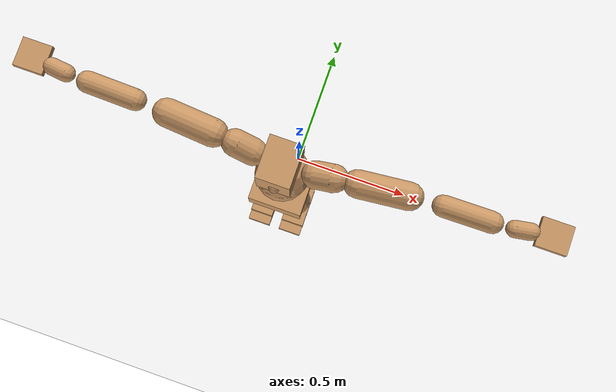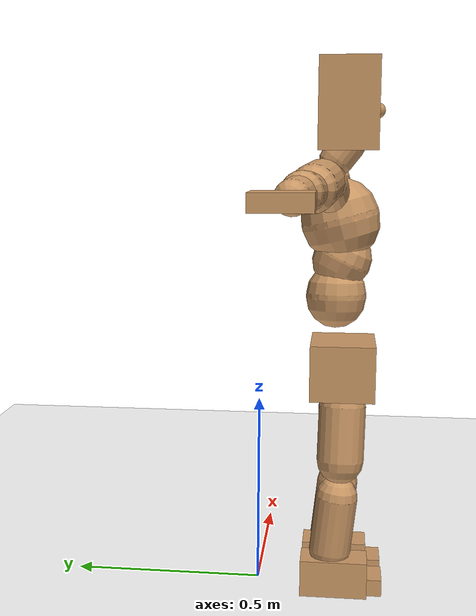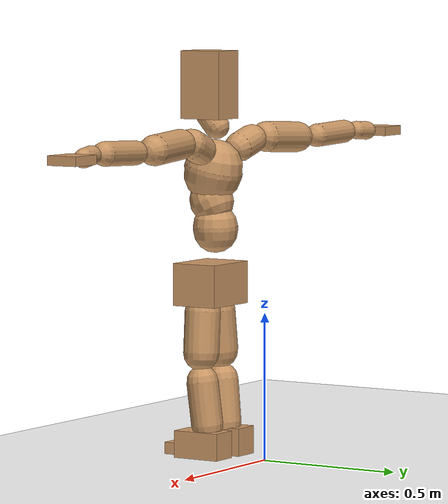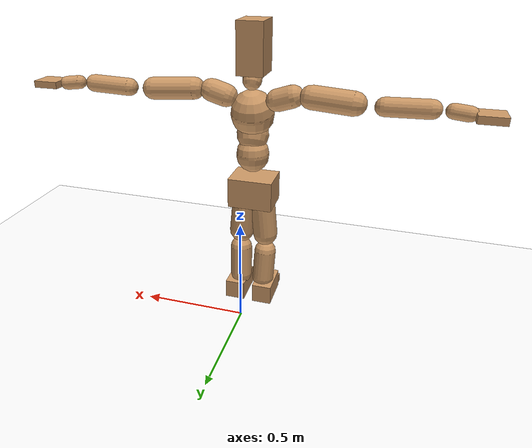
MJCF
<mujoco model="humanoid">
  <option integrator="implicitfast" />

  <visual>
    <global offwidth="1280" offheight="960" />
    <headlight active="1" ambient="0.34 0.34 0.34" diffuse="0.5 0.5 0.5" />
  </visual>

  <default>
    <joint damping="2" stiffness="2" armature="0.01" limited="true" solimplimit="0 .99 .01" />
    <geom condim="1" friction="0.7 0.005 0.0001" solimp=".99 .99 .003" solref="0.015 1" margin="0.001" rgba="0.8 0.6 .4 1" />
    <default class="smplcontact">
      <geom condim="3" friction="1. 0.005 0.0001" solref="0.015 1" solimp="0.98 0.98 0.001" priority="1" />
    </default>
    <default class="stiff_medium">
      <joint stiffness="10" />
    </default>
    <default class="stiff_medium_higher">
      <joint stiffness="50" />
    </default>
    <default class="stiff_high">
      <joint stiffness="100" />
    </default>
  </default>

  <asset>
    <texture type="skybox" builtin="gradient" rgb1="0.99 0.99 0.99" rgb2="0.608 0.828 0.892" width="100" />
    <texture builtin="flat" height="1278" mark="cross" markrgb="1 1 1" name="texgeom" random="0.01" rgb1="0.8 0.6 0.4" rgb2="0.8 0.6 0.4" type="cube" width="127" />
    <texture name="texplane" type="2d" builtin="checker" markrgb="1 1 1" rgb1="0.756 0.772 0.76" rgb2="0.6 0.6 0.6" width="100" height="100" />
    <material name="MatPlane" reflectance="0.5" texture="texplane" texrepeat="1 1" texuniform="true" />
    <material name="geom" texture="texgeom" texuniform="true" />
  </asset>

  <worldbody>
    <light name="tracking_light" pos="0 0 7" dir="0 0 -1" directional="true" cutoff="100" exponent="1" diffuse="1 1 1" specular="0.1 0.1 0.1" mode="trackcom" />
    <camera name="back" pos="0 3 2.4" xyaxes="-1 0 0 0 -1 2" mode="trackcom" />
    <camera name="side" pos="-3 0 2.4" xyaxes="0 -1 0 1 0 2" mode="trackcom" />
    <camera name="front_side" pos="-2.8 -2.8 0.8" xyaxes="0.5 -0.5 0 0.1 0.1 1" mode="trackcom" />
    <geom condim="3" name="floor" pos="0 0 0" rgba="1 1 1 1" size="100 100 .2" type="plane" material="MatPlane" />
    <body name="Pelvis" pos="-0.0018 -0.2233 0.603363" euler="90 0 0">
      <site name="Pelvis" size="0.01" />
      <freejoint name="Pelvis" />
      <geom type="box" pos="-0.0000 -0.0121 -0.0055" size="0.1069 0.0722 0.083" quat="1.0000 0.0000 0.0000 0.0000" density="3165.830099" name="Pelvis" />
      <body name="L_Hip" pos="0.0434375 -0.057125 -0.00425">
        <joint name="L_Hip_x" type="hinge" pos="0 0 0" axis="1 0 0" stiffness="4.682612346938775" range="-160.0 22.92" class="stiff_medium" damping="5.761376063259233" armature="0.003150516248715214"/>
        <joint name="L_Hip_y" type="hinge" pos="0 0 0" axis="0 1 0" stiffness="4.729285204081632" range="-70.0 70.0" class="stiff_medium" damping="5.2271909514404244" armature="0.00577751691085134"/>
        <joint name="L_Hip_z" type="hinge" pos="0 0 0" axis="0 0 1" stiffness="4.725288673469388" range="-28.65 90.0" class="stiff_medium" damping="3.855798953286389" armature="0.003146302077085308"/>
        <geom type="capsule" density="2040.816327" fromto="0.0043125 -0.046875 -0.0005625 0.017125 -0.187625 -0.00225" size="0.0615" name="L_Hip" />
        <body name="L_Knee" pos="0.0214375 -0.2345 -0.0028125">
          <joint name="L_Knee_x" type="hinge" pos="0 0 0" axis="1 0 0" range="-5.16 171.89" damping="3.3147767653831233" armature="0.003468205500974926" stiffness="0.9900423469387756"/>
          <joint name="L_Knee_y" type="hinge" pos="0 0 0" axis="0 1 0" range="-4.58 6.88" damping="4.406653617352898" armature="0.0063275203257154205" stiffness="0.9590346565349543"/>
          <joint name="L_Knee_z" type="hinge" pos="0 0 0" axis="0 0 1" range="-6.88 4.58" damping="3.3272526227236514" armature="0.0034456063533856753" stiffness="1.0040513265306124"/>
          <geom type="capsule" density="1234.567901" fromto="-0.0016875 -0.04975 -0.0054375 -0.0068125 -0.199 -0.021875" size="0.0541" name="L_Knee" />
          <body name="L_Ankle" pos="-0.0085 -0.24875 -0.0273125">
            <joint name="L_Ankle_x" type="hinge" pos="0 0 0" axis="1 0 0" range="-45.84 45.84" class="stiff_medium" damping="3.6717736084900663" armature="0.00599196508089074" stiffness="6.25"/>
            <joint name="L_Ankle_y" type="hinge" pos="0 0 0" axis="0 1 0" range="-74.48 22.92" class="stiff_medium" damping="1.858589102984691" armature="0.006141072806637225" stiffness="6.25"/>
            <joint name="L_Ankle_z" type="hinge" pos="0 0 0" axis="0 0 1" range="-4.58 4.58" class="stiff_medium" damping="4.001717943795461" armature="0.007117220667419809" stiffness="6.25"/>
            <geom type="box" pos="0.0145625 -0.0149375 0.015125" size="0.0483 0.0464 0.085" quat="1.0000 0.0000 0.0000 0.0000" density="449.071558" name="L_Ankle" class="smplcontact" />
            <body name="L_Toe" pos="0.0165 -0.034875 0.0745625">
              <joint name="L_Toe_x" type="hinge" pos="0 0 0" axis="1 0 0" range="-91.67 22.92" armature="0.007683229914736962" damping="1.385931989198691" stiffness="1.25"/>
              <joint name="L_Toe_y" type="hinge" pos="0 0 0" axis="0 1 0" range="-4.58 4.58" armature="0.008367648440754674" damping="1.446344395428927" stiffness="1.25"/>
              <joint name="L_Toe_z" type="hinge" pos="0 0 0" axis="0 0 1" range="-4.58 4.58" armature="0.009751505861704549" damping="1.5613700603720237" stiffness="1.25"/>
              <geom type="box" pos="-0.001875 0.0034375 0.0155" size="0.0478 0.02 0.0496" quat="1.0000 0.0000 0.0000 0.0000" density="423.206892" name="L_Toe" class="smplcontact" />
            </body>
          </body>
        </body>
      </body>
      <body name="R_Hip" pos="-0.0423125 -0.0565625 -0.0026875">
        <joint name="R_Hip_x" type="hinge" pos="0 0 0" axis="1 0 0" stiffness="4.682612346938775" range="-160.0 22.92" class="stiff_medium" damping="5.761376063259233" armature="0.003150516248715214"/>
        <joint name="R_Hip_y" type="hinge" pos="0 0 0" axis="0 1 0" stiffness="4.729285204081632" range="-70.0 70.0" class="stiff_medium" damping="5.2271909514404244" armature="0.00577751691085134"/>
        <joint name="R_Hip_z" type="hinge" pos="0 0 0" axis="0 0 1" stiffness="4.725288673469388" range="-90.0 28.65" class="stiff_medium" damping="3.855798953286389" armature="0.003146302077085308"/>
        <geom type="capsule" density="2040.816327" fromto="-0.0048125 -0.0478125 -0.001125 -0.019125 -0.191312 -0.0044375" size="0.0606" name="R_Hip" />
        <body name="R_Knee" pos="-0.0239375 -0.239125 -0.0055625">
          <joint name="R_Knee_x" type="hinge" pos="0 0 0" axis="1 0 0" range="-5.16 171.89" damping="3.3147767653831233" armature="0.003468205500974926" stiffness="0.9900423469387756"/>
          <joint name="R_Knee_y" type="hinge" pos="0 0 0" axis="0 1 0" range="-6.88 4.58" damping="4.406653617352898" armature="0.0063275203257154205" stiffness="0.9590346565349543"/>
          <joint name="R_Knee_z" type="hinge" pos="0 0 0" axis="0 0 1" range="-4.58 6.88" damping="3.3272526227236514" armature="0.0034456063533856753" stiffness="1.0040513265306124"/>
          <geom type="capsule" density="1234.567901" fromto="0.002 -0.0498125 -0.0053125 0.007875 -0.199187 -0.021125" size="0.0541" name="R_Knee" />
          <body name="R_Ankle" pos="0.009875 -0.249 -0.0264375">
            <joint name="R_Ankle_x" type="hinge" pos="0 0 0" axis="1 0 0" range="-45.84 45.84" class="stiff_medium" damping="3.6717736084900663" armature="0.00599196508089074" stiffness="6.25"/>
            <joint name="R_Ankle_y" type="hinge" pos="0 0 0" axis="0 1 0" range="-22.92 74.48" class="stiff_medium" damping="1.858589102984691" armature="0.006141072806637225" stiffness="6.25"/>
            <joint name="R_Ankle_z" type="hinge" pos="0 0 0" axis="0 0 1" range="-4.58 4.58" class="stiff_medium" damping="4.001717943795461" armature="0.007117220667419809" stiffness="6.25"/>
            <geom type="box" pos="-0.01325 -0.010875 0.016" size="0.0483 0.0478 0.0865" quat="1.0000 0.0000 0.0000 0.0000" density="434.700981" name="R_Ankle" class="smplcontact" />
            <body name="R_Toe" pos="-0.015875 -0.0300625 0.0770625">
              <joint name="R_Toe_x" type="hinge" pos="0 0 0" axis="1 0 0" range="-91.67 22.92" armature="0.007683229914736962" damping="1.385931989198691" stiffness="1.25"/>
              <joint name="R_Toe_y" type="hinge" pos="0 0 0" axis="0 1 0" range="-4.58 4.58" armature="0.008367648440754674" damping="1.446344395428927" stiffness="1.25"/>
              <joint name="R_Toe_z" type="hinge" pos="0 0 0" axis="0 0 1" range="-4.58 4.58" armature="0.009751505861704549" damping="1.5613700603720237" stiffness="1.25"/>
              <geom type="box" pos="0.002625 0.0028125 0.0141875" size="0.0479 0.0216 0.0493" quat="1.0000 0.0000 0.0000 0.0000" density="407.384095" name="R_Toe" class="smplcontact" />
            </body>
          </body>
        </body>
      </body>
      <body name="Torso" pos="-0.0025 0.109 -0.0267">
        <joint name="Torso_x" type="hinge" pos="0 0 0" axis="1 0 0" range="-25.78 57.3" class="stiff_medium" damping="16.249002662379564" armature="0.011000822944888132" stiffness="10.667084285714289"/>
        <joint name="Torso_y" type="hinge" pos="0 0 0" axis="0 1 0" range="-57.3 57.3" class="stiff_high" damping="25.827862257678852" armature="0.015782642166796146" stiffness="105.6664755102041"/>
        <joint name="Torso_z" type="hinge" pos="0 0 0" axis="0 0 1" range="-34.38 34.38" class="stiff_high" damping="22.95942684909094" armature="0.012628565201764915" stiffness="104.35375531914897"/>
        <geom type="capsule" density="2040.816327" fromto="0.0025 0.0608 0.0005 0.003 0.0743 0.0006" size="0.0769" name="Torso" />
        <body name="Spine" pos="0.0055 0.1352 0.0011">
          <joint name="Spine_x" type="hinge" pos="0 0 0" axis="1 0 0" stiffness="10.801640204081632" range="-25.78 57.3" class="stiff_medium" damping="16.529498689681226" armature="0.011242092117287057"/>
          <joint name="Spine_y" type="hinge" pos="0 0 0" axis="0 1 0" stiffness="10.993194042553192" range="-57.3 57.3" class="stiff_high" damping="10.550939846165113" armature="0.015822621024438047"/>
          <joint name="Spine_z" type="hinge" pos="0 0 0" axis="0 0 1" stiffness="21.950184081632656" range="-34.38 34.38" class="stiff_high" damping="14.755254913518767" armature="0.013775988465595862"/>
          <geom type="capsule" density="2040.816327" fromto="0.0007 0.0238 0.0114 0.0008 0.0291 0.014" size="0.0755" name="Spine" />
          <body name="Chest" pos="0.0015 0.0529 0.0254">
            <joint name="Chest_x" type="hinge" pos="0 0 0" axis="1 0 0" stiffness="11.160686250000001" range="-25.78 57.3" class="stiff_medium" damping="16.913025635620162" armature="0.011391192649850414"/>
            <joint name="Chest_y" type="hinge" pos="0 0 0" axis="0 1 0" stiffness="12.279827826086954" range="-57.3 57.3" class="stiff_high" damping="11.15352776697087" armature="0.015828955346832544"/>
            <joint name="Chest_z" type="hinge" pos="0 0 0" axis="0 0 1" stiffness="22.066057083333334" range="-34.38 34.38" class="stiff_high" damping="15.064016907343916" armature="0.014283161773945485"/>
            <geom type="capsule" density="2040.816327" fromto="-0.0009 0.0682 -0.0173 -0.001 0.0833 -0.0212" size="0.1002" name="Chest" />
            <body name="Neck" pos="-0.0028 0.2139 -0.0429">
              <joint name="Neck_x" type="hinge" pos="0 0 0" axis="1 0 0" range="-28.65 57.3" class="stiff_medium_higher" damping="10.000000000000014" armature="0.01000000000000003" stiffness="50.0"/>
              <joint name="Neck_y" type="hinge" pos="0 0 0" axis="0 1 0" range="-40.11 40.11" class="stiff_medium_higher" damping="10.0" armature="0.010000000000000002" stiffness="50.0"/>
              <joint name="Neck_z" type="hinge" pos="0 0 0" axis="0 0 1" range="-40.11 40.11" class="stiff_medium_higher" damping="10.00000000000001" armature="0.010000000000000024" stiffness="50.0"/>
              <geom type="capsule" density="1000" fromto="0.001 0.013 0.0103 0.0041 0.052 0.0411" size="0.0436" name="Neck" />
              <body name="Head" pos="0.0052 0.065 0.0513">
                <joint name="Head_x" type="hinge" pos="0 0 0" axis="1 0 0" range="-28.65 57.3" class="stiff_medium_higher" damping="2.000000000000004" armature="0.01000000000000004" stiffness="50.0"/>
                <joint name="Head_y" type="hinge" pos="0 0 0" axis="0 1 0" range="-40.11 40.11" class="stiff_medium_higher" damping="2.0" armature="0.01" stiffness="50.0"/>
                <joint name="Head_z" type="hinge" pos="0 0 0" axis="0 0 1" range="-40.11 40.11" class="stiff_medium_higher" damping="2.000000000000003" armature="0.010000000000000033" stiffness="50.0"/>
                <geom type="box" pos="-0.0042 0.0876 -0.0116" size="0.0606 0.1154 0.076" quat="1.0000 0.0000 0.0000 0.0000" density="1018.069894" name="Head" />
                <geom type="capsule" name="nose" size="0.02 0.01" pos="0 0.07 0.05" quat="1 0 0 0" mass="0" contype="0" conaffinity="0" />
              </body>
            </body>
            <body name="L_Thorax" pos="0.09456 0.14604 -0.04092">
              <joint name="L_Thorax_x" type="hinge" pos="0 0 0" axis="1 0 0" range="-10.89 4.58" class="stiff_medium_higher" damping="27.3428280371455" armature="0.013883161405287501" stiffness="67.31448112244898"/>
              <joint name="L_Thorax_y" type="hinge" pos="0 0 0" axis="0 1 0" range="-28.65 17.19" class="stiff_medium_higher" damping="29.39539222803986" armature="0.015973211475722778" stiffness="67.620175"/>
              <joint name="L_Thorax_z" type="hinge" pos="0 0 0" axis="0 0 1" range="-31.51 40.11" class="stiff_medium_higher" damping="29.39640952740423" armature="0.015975115138279115" stiffness="67.61679693877551"/>
              <geom type="capsule" density="1000" fromto="0.02184 0.00732 -0.00216 0.08736 0.02928 -0.00852" size="0.0521" name="L_Thorax" />
              <body name="L_Shoulder" pos="0.1092 0.0366 -0.01068">
                <joint name="L_Shoulder_x" type="hinge" pos="0 0 0" axis="1 0 0" range="-97.4 97.4" class="stiff_medium" damping="7.9342248713428685" armature="0.013032307273704732" stiffness="13.417919999999999"/>
                <joint name="L_Shoulder_y" type="hinge" pos="0 0 0" axis="0 1 0" range="-108.86 80.21" class="stiff_medium" damping="8.787023272078152" armature="0.015885669306109254" stiffness="13.501298367346937"/>
                <joint name="L_Shoulder_z" type="hinge" pos="0 0 0" axis="0 0 1" range="-97.4 85.94" class="stiff_medium" damping="8.786069504764413" armature="0.015888008764521212" stiffness="13.496380000000002"/>
                <geom type="capsule" density="1000" fromto="0.06228 -0.00312 -0.0066 0.24924 -0.01224 -0.0264" size="0.0517" name="L_Shoulder" />
                <body name="L_Elbow" pos="0.31152 -0.01536 -0.033">
                  <joint name="L_Elbow_x" type="hinge" pos="0 0 0" axis="1 0 0" range="-17.19 4.58" damping="6.232456205291386" armature="0.011731525217588254" stiffness="2.6488293469387756"/>
                  <joint name="L_Elbow_y" type="hinge" pos="0 0 0" axis="0 1 0" range="-180.0 17.19" damping="7.156106367972159" armature="0.015461775606096715" stiffness="2.649623673469388"/>
                  <joint name="L_Elbow_z" type="hinge" pos="0 0 0" axis="0 0 1" range="-100.84 4.58" damping="7.157115854883427" armature="0.015474031127394223" stiffness="2.648272163265306"/>
                  <geom type="capsule" density="1000" fromto="0.05976 0.00216 -0.00024 0.23928 0.00864 -0.00108" size="0.0405" name="L_Elbow" />
                  <body name="L_Wrist" pos="0.29904 0.0108 -0.00144">
                    <joint name="L_Wrist_x" type="hinge" pos="0 0 0" axis="1 0 0" range="-180.0 22.92" armature="0.01147048725635312" damping="2.3885555565203016" stiffness="2.4869029183673472"/>
                    <joint name="L_Wrist_y" type="hinge" pos="0 0 0" axis="0 1 0" range="-17.19 17.19" armature="0.014137841032974064" damping="2.6585613747279035" stiffness="2.4996562653061227"/>
                    <joint name="L_Wrist_z" type="hinge" pos="0 0 0" axis="0 0 1" range="-22.92 22.92" armature="0.014283798741946333" damping="2.6694984653462903" stiffness="2.4945122040816328"/>
                    <geom type="capsule" density="1000" fromto="0.02016 -0.00192 -0.0036 0.08064 -0.0078 -0.0144" size="0.0318" name="L_Wrist" class="smplcontact" />
                    <body name="L_Hand" pos="0.1008 -0.00984 -0.01788">
                      <joint name="L_Hand_x" type="hinge" pos="0 0 0" axis="1 0 0" range="-17.19 17.19" armature="0.01019169110629044" damping="2.2117892600832048" stiffness="2.4000000000000004"/>
                      <joint name="L_Hand_y" type="hinge" pos="0 0 0" axis="0 1 0" range="-51.57 51.57" armature="0.012318239464289034" damping="2.4316157062452812" stiffness="2.4000000000000004"/>
                      <joint name="L_Hand_z" type="hinge" pos="0 0 0" axis="0 0 1" range="-91.67 91.67" armature="0.012885099984316677" damping="2.4869354620641055" stiffness="2.4000000000000004"/>
                      <geom type="box" pos="0.05916 0.0012 -0.00696" size="0.0585 0.0158 0.0538" quat="1.0000 0.0000 0.0000 0.0000" density="400.552564" name="L_Hand" class="smplcontact" />
                    </body>
                  </body>
                </body>
              </body>
            </body>
            <body name="R_Thorax" pos="-0.09816 0.14256 -0.04632">
              <joint name="R_Thorax_x" type="hinge" pos="0 0 0" axis="1 0 0" range="-10.89 4.58" class="stiff_medium_higher" damping="27.3428280371455" armature="0.013883161405287501" stiffness="67.31448112244898"/>
              <joint name="R_Thorax_y" type="hinge" pos="0 0 0" axis="0 1 0" range="-17.19 28.65" class="stiff_medium_higher" damping="29.39539222803986" armature="0.015973211475722778" stiffness="67.620175"/>
              <joint name="R_Thorax_z" type="hinge" pos="0 0 0" axis="0 0 1" range="-40.11 31.51" class="stiff_medium_higher" damping="29.39640952740423" armature="0.015975115138279115" stiffness="67.61679693877551"/>
              <geom type="capsule" density="1000" fromto="-0.02304 0.0078 -0.00216 -0.09216 0.0312 -0.00876" size="0.0511" name="R_Thorax" />
              <body name="R_Shoulder" pos="-0.1152 0.03912 -0.01092">
                <joint name="R_Shoulder_x" type="hinge" pos="0 0 0" axis="1 0 0" range="-97.4 97.4" class="stiff_medium" damping="7.9342248713428685" armature="0.013032307273704732" stiffness="13.417919999999999"/>
                <joint name="R_Shoulder_y" type="hinge" pos="0 0 0" axis="0 1 0" range="-80.21 108.86" class="stiff_medium" damping="8.787023272078152" armature="0.015885669306109254" stiffness="13.501298367346937"/>
                <joint name="R_Shoulder_z" type="hinge" pos="0 0 0" axis="0 0 1" range="-85.94 97.4" class="stiff_medium" damping="8.786069504764413" armature="0.015888008764521212" stiffness="13.496380000000002"/>
                <geom type="capsule" density="1000" fromto="-0.06084 -0.00324 -0.00516 -0.2436 -0.01284 -0.02052" size="0.0531" name="R_Shoulder" />
                <body name="R_Elbow" pos="-0.30444 -0.01596 -0.02568">
                  <joint name="R_Elbow_x" type="hinge" pos="0 0 0" axis="1 0 0" range="-17.19 4.58" damping="6.232456205291386" armature="0.011731525217588254" stiffness="2.6488293469387756"/>
                  <joint name="R_Elbow_y" type="hinge" pos="0 0 0" axis="0 1 0" range="-17.19 180.0" damping="7.156106367972159" armature="0.015461775606096715" stiffness="2.649623673469388"/>
                  <joint name="R_Elbow_z" type="hinge" pos="0 0 0" axis="0 0 1" range="-4.58 100.84" damping="7.157115854883427" armature="0.015474031127394223" stiffness="2.648272163265306"/>
                  <geom type="capsule" density="1000" fromto="-0.06132 0.00192 -0.00132 -0.24504 0.00744 -0.00528" size="0.0408" name="R_Elbow" />
                  <body name="R_Wrist" pos="-0.30636 0.00936 -0.00672">
                    <joint name="R_Wrist_x" type="hinge" pos="0 0 0" axis="1 0 0" range="-180.0 22.92" armature="0.01147048725635312" damping="2.3885555565203016" stiffness="2.4869029183673472"/>
                    <joint name="R_Wrist_y" type="hinge" pos="0 0 0" axis="0 1 0" range="-17.19 17.19" armature="0.014137841032974064" damping="2.6585613747279035" stiffness="2.4996562653061227"/>
                    <joint name="R_Wrist_z" type="hinge" pos="0 0 0" axis="0 0 1" range="-22.92 22.92" armature="0.014283798741946333" damping="2.6694984653462903" stiffness="2.4945122040816328"/>
                    <geom type="capsule" density="1000" fromto="-0.02028 -0.00144 -0.00252 -0.08124 -0.00588 -0.00996" size="0.0326" name="R_Wrist" class="smplcontact" />
                    <body name="R_Hand" pos="-0.10152 -0.00732 -0.01236">
                      <joint name="R_Hand_x" type="hinge" pos="0 0 0" axis="1 0 0" range="-17.19 17.19" armature="0.01019169110629044" damping="2.2117892600832048" stiffness="2.4000000000000004"/>
                      <joint name="R_Hand_y" type="hinge" pos="0 0 0" axis="0 1 0" range="-51.57 51.57" armature="0.012318239464289034" damping="2.4316157062452812" stiffness="2.4000000000000004"/>
                      <joint name="R_Hand_z" type="hinge" pos="0 0 0" axis="0 0 1" range="-91.67 91.67" armature="0.012885099984316677" damping="2.4869354620641055" stiffness="2.4000000000000004"/>
                      <geom type="box" pos="-0.05544 -0.00108 -0.00948" size="0.0569 0.0164 0.0546" quat="1.0000 0.0000 0.0000 0.0000" density="403.679611" name="R_Hand" class="smplcontact" />
                    </body>
                  </body>
                </body>
              </body>
            </body>
          </body>
        </body>
      </body>
    </body>
  </worldbody>
  <actuator>
    <general name="L_Hip_x" joint="L_Hip_x" biastype="affine" gainprm="134.5455305788832" biasprm="-100.82823820114426 -84.28702224489795 -0.7681834751012311" ctrllimited="true" ctrlrange="-1 1" forcerange="-168.5740444897959 168.5740444897959" />
    <general name="L_Hip_y" joint="L_Hip_y" biastype="affine" gainprm="104.00241357711633" biasprm="0.0 -85.12713367346939 -1.045438190288085" ctrllimited="true" ctrlrange="-1 1" forcerange="-170.25426734693878 170.25426734693878" />
    <general name="L_Hip_z" joint="L_Hip_z" biastype="affine" gainprm="88.0675601736452" biasprm="45.53682947031718 -85.05519612244898 -0.7711597906572778" ctrllimited="true" ctrlrange="-1 1" forcerange="-170.11039224489795 170.11039224489795" />
    <general name="L_Knee_x" joint="L_Knee_x" biastype="affine" gainprm="137.6700859239888" biasprm="129.64548673316378 -89.1038112244898 -0.8286941913457808" ctrllimited="true" ctrlrange="-1 1" forcerange="-178.2076224489796 178.2076224489796" />
    <general name="L_Knee_y" joint="L_Knee_y" biastype="affine" gainprm="8.63194770327106" biasprm="1.7324153331172283 -86.3131190881459 -1.1016634043382245" ctrllimited="true" ctrlrange="-1 1" forcerange="-172.6262381762918 172.6262381762918" />
    <general name="L_Knee_z" joint="L_Knee_z" biastype="affine" gainprm="9.03712757714746" biasprm="-1.8137341559720035 -90.36461938775511 -0.8318131556809129" ctrllimited="true" ctrlrange="-1 1" forcerange="-180.72923877551023 180.72923877551023" />
    <general name="L_Ankle_x" joint="L_Ankle_x" biastype="affine" gainprm="45.003314762673796" biasprm="0.0 -56.25 -1.2239245361633555" ctrllimited="true" ctrlrange="-1 1" forcerange="-112.5 112.5" />
    <general name="L_Ankle_y" joint="L_Ankle_y" biastype="affine" gainprm="47.811113196819676" biasprm="-25.309455815482774 -56.25 -1.239059401989794" ctrllimited="true" ctrlrange="-1 1" forcerange="-112.5 112.5" />
    <general name="L_Ankle_z" joint="L_Ankle_z" biastype="affine" gainprm="4.496404485450391" biasprm="0.0 -56.25 -1.3339059812651535" ctrllimited="true" ctrlrange="-1 1" forcerange="-112.5 112.5" />
    <general name="L_Toe_x" joint="L_Toe_x" biastype="affine" gainprm="44.999387771856796" biasprm="-26.998061866787282 -45.0 -0.5543727956794764" ctrllimited="true" ctrlrange="-1 1" forcerange="-90.0 90.0" />
    <general name="L_Toe_y" joint="L_Toe_y" biastype="affine" gainprm="3.597123588360313" biasprm="0.0 -45.0 -0.5785377581715708" ctrllimited="true" ctrlrange="-1 1" forcerange="-90.0 90.0" />
    <general name="L_Toe_z" joint="L_Toe_z" biastype="affine" gainprm="3.597123588360313" biasprm="0.0 -45.0 -0.6245480241488095" ctrllimited="true" ctrlrange="-1 1" forcerange="-90.0 90.0" />
    <general name="R_Hip_x" joint="R_Hip_x" biastype="affine" gainprm="134.5455305788832" biasprm="-100.82823820114426 -84.28702224489795 -0.7681834751012311" ctrllimited="true" ctrlrange="-1 1" forcerange="-168.5740444897959 168.5740444897959" />
    <general name="R_Hip_y" joint="R_Hip_y" biastype="affine" gainprm="104.00241357711633" biasprm="0.0 -85.12713367346939 -1.045438190288085" ctrllimited="true" ctrlrange="-1 1" forcerange="-170.25426734693878 170.25426734693878" />
    <general name="R_Hip_z" joint="R_Hip_z" biastype="affine" gainprm="88.0675601736452" biasprm="-45.53682947031718 -85.05519612244898 -0.7711597906572778" ctrllimited="true" ctrlrange="-1 1" forcerange="-170.11039224489795 170.11039224489795" />
    <general name="R_Knee_x" joint="R_Knee_x" biastype="affine" gainprm="137.6700859239888" biasprm="129.64548673316378 -89.1038112244898 -0.8286941913457808" ctrllimited="true" ctrlrange="-1 1" forcerange="-178.2076224489796 178.2076224489796" />
    <general name="R_Knee_y" joint="R_Knee_y" biastype="affine" gainprm="8.63194770327106" biasprm="-1.7324153331172283 -86.3131190881459 -1.1016634043382245" ctrllimited="true" ctrlrange="-1 1" forcerange="-172.6262381762918 172.6262381762918" />
    <general name="R_Knee_z" joint="R_Knee_z" biastype="affine" gainprm="9.03712757714746" biasprm="1.8137341559720035 -90.36461938775511 -0.8318131556809129" ctrllimited="true" ctrlrange="-1 1" forcerange="-180.72923877551023 180.72923877551023" />
    <general name="R_Ankle_x" joint="R_Ankle_x" biastype="affine" gainprm="45.003314762673796" biasprm="0.0 -56.25 -1.2239245361633555" ctrllimited="true" ctrlrange="-1 1" forcerange="-112.5 112.5" />
    <general name="R_Ankle_y" joint="R_Ankle_y" biastype="affine" gainprm="47.811113196819676" biasprm="25.309455815482774 -56.25 -1.239059401989794" ctrllimited="true" ctrlrange="-1 1" forcerange="-112.5 112.5" />
    <general name="R_Ankle_z" joint="R_Ankle_z" biastype="affine" gainprm="4.496404485450391" biasprm="0.0 -56.25 -1.3339059812651535" ctrllimited="true" ctrlrange="-1 1" forcerange="-112.5 112.5" />
    <general name="R_Toe_x" joint="R_Toe_x" biastype="affine" gainprm="44.999387771856796" biasprm="-26.998061866787282 -45.0 -0.5543727956794764" ctrllimited="true" ctrlrange="-1 1" forcerange="-90.0 90.0" />
    <general name="R_Toe_y" joint="R_Toe_y" biastype="affine" gainprm="3.597123588360313" biasprm="0.0 -45.0 -0.5785377581715708" ctrllimited="true" ctrlrange="-1 1" forcerange="-90.0 90.0" />
    <general name="R_Toe_z" joint="R_Toe_z" biastype="affine" gainprm="3.597123588360313" biasprm="0.0 -45.0 -0.6245480241488095" ctrllimited="true" ctrlrange="-1 1" forcerange="-90.0 90.0" />
    <general name="Torso_x" joint="Torso_x" biastype="affine" gainprm="185.60976811664653" biasprm="70.4191127953382 -256.0100228571429 -4.33306737663455" ctrllimited="true" ctrlrange="-1 1" forcerange="-384.01503428571436 384.01503428571436" />
    <general name="Torso_y" joint="Torso_y" biastype="affine" gainprm="253.61822171989738" biasprm="0.0 -253.59954122448983 -5.165572451535771" ctrllimited="true" ctrlrange="-1 1" forcerange="-380.39931183673474 380.39931183673474" />
    <general name="Torso_z" joint="Torso_z" biastype="affine" gainprm="150.28047671343057" biasprm="0.0 -250.44901276595752 -4.591885369818188" ctrllimited="true" ctrlrange="-1 1" forcerange="-375.6735191489363 375.6735191489363" />
    <general name="Spine_x" joint="Spine_x" biastype="affine" gainprm="187.9510726510386" biasprm="71.3073881795948 -259.2393648979592 -4.4078663172483274" ctrllimited="true" ctrlrange="-1 1" forcerange="-388.8590473469388 388.8590473469388" />
    <general name="Spine_y" joint="Spine_y" biastype="affine" gainprm="263.8560915968915" biasprm="0.0 -263.8366570212766 -5.275469923082556" ctrllimited="true" ctrlrange="-1 1" forcerange="-395.7549855319149 395.7549855319149" />
    <general name="Spine_z" joint="Spine_z" biastype="affine" gainprm="158.05296693189538" biasprm="0.0 -263.4022089795919 -4.918418304506256" ctrllimited="true" ctrlrange="-1 1" forcerange="-395.1033134693878 395.1033134693878" />
    <general name="Chest_x" joint="Chest_x" biastype="affine" gainprm="194.19855805015155" biasprm="73.67764263048598 -267.85647 -4.51014016949871" ctrllimited="true" ctrlrange="-1 1" forcerange="-401.78470500000003 401.78470500000003" />
    <general name="Chest_y" joint="Chest_y" biastype="affine" gainprm="294.73757700737673" biasprm="0.0 -294.71586782608694 -5.576763883485435" ctrllimited="true" ctrlrange="-1 1" forcerange="-442.0738017391304 442.0738017391304" />
    <general name="Chest_z" joint="Chest_z" biastype="affine" gainprm="158.88731399878043" biasprm="0.0 -264.792685 -5.021338969114638" ctrllimited="true" ctrlrange="-1 1" forcerange="-397.1890275 397.1890275" />
    <general name="Neck_x" joint="Neck_x" biastype="affine" gainprm="27.00198885760427" biasprm="9.000662952534757 -36.0 -0.8000000000000012" ctrllimited="true" ctrlrange="-1 1" forcerange="-72.0 72.0" />
    <general name="Neck_y" joint="Neck_y" biastype="affine" gainprm="25.20185626709732" biasprm="0.0 -36.0 -0.8" ctrllimited="true" ctrlrange="-1 1" forcerange="-72.0 72.0" />
    <general name="Neck_z" joint="Neck_z" biastype="affine" gainprm="25.20185626709732" biasprm="0.0 -36.0 -0.8000000000000009" ctrllimited="true" ctrlrange="-1 1" forcerange="-72.0 72.0" />
    <general name="Head_x" joint="Head_x" biastype="affine" gainprm="18.001325905069514" biasprm="6.000441968356505 -24.0 -0.8000000000000016" ctrllimited="true" ctrlrange="-1 1" forcerange="-48.0 48.0" />
    <general name="Head_y" joint="Head_y" biastype="affine" gainprm="16.801237511398213" biasprm="0.0 -24.0 -0.8" ctrllimited="true" ctrlrange="-1 1" forcerange="-48.0 48.0" />
    <general name="Head_z" joint="Head_z" biastype="affine" gainprm="16.801237511398213" biasprm="0.0 -24.0 -0.8000000000000013" ctrllimited="true" ctrlrange="-1 1" forcerange="-48.0 48.0" />
    <general name="L_Thorax_x" joint="L_Thorax_x" biastype="affine" gainprm="21.810088599489532" biasprm="-8.896034845687073 -161.55475469387756 -2.1874262429716405" ctrllimited="true" ctrlrange="-1 1" forcerange="-323.1095093877551 323.1095093877551" />
    <general name="L_Thorax_y" joint="L_Thorax_y" biastype="affine" gainprm="64.92014975641781" biasprm="-16.230037439104454 -162.28842 -2.3516313782431886" ctrllimited="true" ctrlrange="-1 1" forcerange="-324.57684 324.57684" />
    <general name="L_Thorax_z" joint="L_Thorax_z" biastype="affine" gainprm="101.42558571489965" biasprm="12.179000797935451 -162.28031265306123 -2.3517127621923386" ctrllimited="true" ctrlrange="-1 1" forcerange="-324.56062530612246 324.56062530612246" />
    <general name="L_Shoulder_x" joint="L_Shoulder_x" biastype="affine" gainprm="109.48705143225524" biasprm="0.0 -64.406016 -2.115793299024765" ctrllimited="true" ctrlrange="-1 1" forcerange="-128.812032 128.812032" />
    <general name="L_Shoulder_y" joint="L_Shoulder_y" biastype="affine" gainprm="106.92684888169526" biasprm="-16.202751470146342 -64.80623216326529 -2.3432062058875074" ctrllimited="true" ctrlrange="-1 1" forcerange="-129.61246432653058 129.61246432653058" />
    <general name="L_Shoulder_z" joint="L_Shoulder_z" biastype="affine" gainprm="103.64852686442701" biasprm="-6.478739597831004 -64.782624 -2.342951867937177" ctrllimited="true" ctrlrange="-1 1" forcerange="-129.565248 129.565248" />
    <general name="L_Elbow_x" joint="L_Elbow_x" biastype="affine" gainprm="18.115998712513008" biasprm="-10.493465492181402 -95.35785648979592 -0.9971929928466218" ctrllimited="true" ctrlrange="-1 1" forcerange="-190.71571297959184 190.71571297959184" />
    <general name="L_Elbow_y" joint="L_Elbow_y" biastype="affine" gainprm="164.14171059385552" biasprm="-135.52366703070956 -95.38645224489797 -1.1449770188755455" ctrllimited="true" ctrlrange="-1 1" forcerange="-190.77290448979593 190.77290448979593" />
    <general name="L_Elbow_z" joint="L_Elbow_z" biastype="affine" gainprm="87.70725119427513" biasprm="-80.08632138077144 -95.33779787755103 -1.1451385367813482" ctrllimited="true" ctrlrange="-1 1" forcerange="-190.67559575510205 190.67559575510205" />
    <general name="L_Wrist_x" joint="L_Wrist_x" biastype="affine" gainprm="26.423011144121567" biasprm="-20.454004487081686 -14.921417510204083 -0.9554222226081207" ctrllimited="true" ctrlrange="-1 1" forcerange="-29.842835020408167 29.842835020408167" />
    <general name="L_Wrist_y" joint="L_Wrist_y" biastype="affine" gainprm="4.499712708242443" biasprm="0.0 -14.997937591836736 -1.0634245498911614" ctrllimited="true" ctrlrange="-1 1" forcerange="-29.995875183673473 29.995875183673473" />
    <general name="L_Wrist_z" joint="L_Wrist_z" biastype="affine" gainprm="5.987270287979567" biasprm="0.0 -14.967073224489797 -1.0677993861385162" ctrllimited="true" ctrlrange="-1 1" forcerange="-29.934146448979593 29.934146448979593" />
    <general name="L_Hand_x" joint="L_Hand_x" biastype="affine" gainprm="4.320318217216685" biasprm="0.0 -14.400000000000002 -0.8847157040332819" ctrllimited="true" ctrlrange="-1 1" forcerange="-28.800000000000004 28.800000000000004" />
    <general name="L_Hand_y" joint="L_Hand_y" biastype="affine" gainprm="12.960954651650052" biasprm="0.0 -14.400000000000002 -0.9726462824981126" ctrllimited="true" ctrlrange="-1 1" forcerange="-28.800000000000004 28.800000000000004" />
    <general name="L_Hand_z" joint="L_Hand_z" biastype="affine" gainprm="23.03918388436611" biasprm="0.0 -14.400000000000002 -0.9947741848256423" ctrllimited="true" ctrlrange="-1 1" forcerange="-28.800000000000004 28.800000000000004" />
    <general name="R_Thorax_x" joint="R_Thorax_x" biastype="affine" gainprm="21.810088599489532" biasprm="-8.896034845687073 -161.55475469387756 -2.1874262429716405" ctrllimited="true" ctrlrange="-1 1" forcerange="-323.1095093877551 323.1095093877551" />
    <general name="R_Thorax_y" joint="R_Thorax_y" biastype="affine" gainprm="64.92014975641781" biasprm="16.230037439104443 -162.28842 -2.3516313782431886" ctrllimited="true" ctrlrange="-1 1" forcerange="-324.57684 324.57684" />
    <general name="R_Thorax_z" joint="R_Thorax_z" biastype="affine" gainprm="101.42558571489965" biasprm="-12.179000797935451 -162.28031265306123 -2.3517127621923386" ctrllimited="true" ctrlrange="-1 1" forcerange="-324.56062530612246 324.56062530612246" />
    <general name="R_Shoulder_x" joint="R_Shoulder_x" biastype="affine" gainprm="109.48705143225524" biasprm="0.0 -64.406016 -2.115793299024765" ctrllimited="true" ctrlrange="-1 1" forcerange="-128.812032 128.812032" />
    <general name="R_Shoulder_y" joint="R_Shoulder_y" biastype="affine" gainprm="106.92684888169526" biasprm="16.202751470146342 -64.80623216326529 -2.3432062058875074" ctrllimited="true" ctrlrange="-1 1" forcerange="-129.61246432653058 129.61246432653058" />
    <general name="R_Shoulder_z" joint="R_Shoulder_z" biastype="affine" gainprm="103.64852686442701" biasprm="6.478739597830989 -64.782624 -2.342951867937177" ctrllimited="true" ctrlrange="-1 1" forcerange="-129.565248 129.565248" />
    <general name="R_Elbow_x" joint="R_Elbow_x" biastype="affine" gainprm="18.115998712513008" biasprm="-10.493465492181402 -95.35785648979592 -0.9971929928466218" ctrllimited="true" ctrlrange="-1 1" forcerange="-190.71571297959184 190.71571297959184" />
    <general name="R_Elbow_y" joint="R_Elbow_y" biastype="affine" gainprm="164.14171059385552" biasprm="135.52366703070956 -95.38645224489797 -1.1449770188755455" ctrllimited="true" ctrlrange="-1 1" forcerange="-190.77290448979593 190.77290448979593" />
    <general name="R_Elbow_z" joint="R_Elbow_z" biastype="affine" gainprm="87.70725119427513" biasprm="80.08632138077142 -95.33779787755103 -1.1451385367813482" ctrllimited="true" ctrlrange="-1 1" forcerange="-190.67559575510205 190.67559575510205" />
    <general name="R_Wrist_x" joint="R_Wrist_x" biastype="affine" gainprm="26.423011144121567" biasprm="-20.454004487081686 -14.921417510204083 -0.9554222226081207" ctrllimited="true" ctrlrange="-1 1" forcerange="-29.842835020408167 29.842835020408167" />
    <general name="R_Wrist_y" joint="R_Wrist_y" biastype="affine" gainprm="4.499712708242443" biasprm="0.0 -14.997937591836736 -1.0634245498911614" ctrllimited="true" ctrlrange="-1 1" forcerange="-29.995875183673473 29.995875183673473" />
    <general name="R_Wrist_z" joint="R_Wrist_z" biastype="affine" gainprm="5.987270287979567" biasprm="0.0 -14.967073224489797 -1.0677993861385162" ctrllimited="true" ctrlrange="-1 1" forcerange="-29.934146448979593 29.934146448979593" />
    <general name="R_Hand_x" joint="R_Hand_x" biastype="affine" gainprm="4.320318217216685" biasprm="0.0 -14.400000000000002 -0.8847157040332819" ctrllimited="true" ctrlrange="-1 1" forcerange="-28.800000000000004 28.800000000000004" />
    <general name="R_Hand_y" joint="R_Hand_y" biastype="affine" gainprm="12.960954651650052" biasprm="0.0 -14.400000000000002 -0.9726462824981126" ctrllimited="true" ctrlrange="-1 1" forcerange="-28.800000000000004 28.800000000000004" />
    <general name="R_Hand_z" joint="R_Hand_z" biastype="affine" gainprm="23.03918388436611" biasprm="0.0 -14.400000000000002 -0.9947741848256423" ctrllimited="true" ctrlrange="-1 1" forcerange="-28.800000000000004 28.800000000000004" />
  </actuator>
  <contact>
    <exclude body1="Torso" body2="Chest" />
    <exclude body1="Head" body2="Chest" />
    <exclude body1="R_Knee" body2="R_Toe" />
    <exclude body1="R_Knee" body2="L_Ankle" />
    <exclude body1="R_Knee" body2="L_Toe" />
    <exclude body1="L_Knee" body2="L_Toe" />
    <exclude body1="L_Knee" body2="R_Ankle" />
    <exclude body1="L_Knee" body2="R_Toe" />
    <exclude body1="L_Shoulder" body2="Chest" />
    <exclude body1="R_Shoulder" body2="Chest" />
  </contact>
  <sensor>
    <framelinvel name="sensor_Pelvis_framelinvel" objtype="xbody" objname="Pelvis" />
    <framelinvel name="sensor_L_Hip_framelinvel" objtype="xbody" objname="L_Hip" />
    <framelinvel name="sensor_L_Knee_framelinvel" objtype="xbody" objname="L_Knee" />
    <framelinvel name="sensor_L_Ankle_framelinvel" objtype="xbody" objname="L_Ankle" />
    <framelinvel name="sensor_L_Toe_framelinvel" objtype="xbody" objname="L_Toe" />
    <framelinvel name="sensor_R_Hip_framelinvel" objtype="xbody" objname="R_Hip" />
    <framelinvel name="sensor_R_Knee_framelinvel" objtype="xbody" objname="R_Knee" />
    <framelinvel name="sensor_R_Ankle_framelinvel" objtype="xbody" objname="R_Ankle" />
    <framelinvel name="sensor_R_Toe_framelinvel" objtype="xbody" objname="R_Toe" />
    <framelinvel name="sensor_Torso_framelinvel" objtype="xbody" objname="Torso" />
    <framelinvel name="sensor_Spine_framelinvel" objtype="xbody" objname="Spine" />
    <framelinvel name="sensor_Chest_framelinvel" objtype="xbody" objname="Chest" />
    <framelinvel name="sensor_Neck_framelinvel" objtype="xbody" objname="Neck" />
    <framelinvel name="sensor_Head_framelinvel" objtype="xbody" objname="Head" />
    <framelinvel name="sensor_L_Thorax_framelinvel" objtype="xbody" objname="L_Thorax" />
    <framelinvel name="sensor_L_Shoulder_framelinvel" objtype="xbody" objname="L_Shoulder" />
    <framelinvel name="sensor_L_Elbow_framelinvel" objtype="xbody" objname="L_Elbow" />
    <framelinvel name="sensor_L_Wrist_framelinvel" objtype="xbody" objname="L_Wrist" />
    <framelinvel name="sensor_L_Hand_framelinvel" objtype="xbody" objname="L_Hand" />
    <framelinvel name="sensor_R_Thorax_framelinvel" objtype="xbody" objname="R_Thorax" />
    <framelinvel name="sensor_R_Shoulder_framelinvel" objtype="xbody" objname="R_Shoulder" />
    <framelinvel name="sensor_R_Elbow_framelinvel" objtype="xbody" objname="R_Elbow" />
    <framelinvel name="sensor_R_Wrist_framelinvel" objtype="xbody" objname="R_Wrist" />
    <framelinvel name="sensor_R_Hand_framelinvel" objtype="xbody" objname="R_Hand" />
    <frameangvel name="sensor_Pelvis_frameangvel" objtype="xbody" objname="Pelvis" />
    <frameangvel name="sensor_L_Hip_frameangvel" objtype="xbody" objname="L_Hip" />
    <frameangvel name="sensor_L_Knee_frameangvel" objtype="xbody" objname="L_Knee" />
    <frameangvel name="sensor_L_Ankle_frameangvel" objtype="xbody" objname="L_Ankle" />
    <frameangvel name="sensor_L_Toe_frameangvel" objtype="xbody" objname="L_Toe" />
    <frameangvel name="sensor_R_Hip_frameangvel" objtype="xbody" objname="R_Hip" />
    <frameangvel name="sensor_R_Knee_frameangvel" objtype="xbody" objname="R_Knee" />
    <frameangvel name="sensor_R_Ankle_frameangvel" objtype="xbody" objname="R_Ankle" />
    <frameangvel name="sensor_R_Toe_frameangvel" objtype="xbody" objname="R_Toe" />
    <frameangvel name="sensor_Torso_frameangvel" objtype="xbody" objname="Torso" />
    <frameangvel name="sensor_Spine_frameangvel" objtype="xbody" objname="Spine" />
    <frameangvel name="sensor_Chest_frameangvel" objtype="xbody" objname="Chest" />
    <frameangvel name="sensor_Neck_frameangvel" objtype="xbody" objname="Neck" />
    <frameangvel name="sensor_Head_frameangvel" objtype="xbody" objname="Head" />
    <frameangvel name="sensor_L_Thorax_frameangvel" objtype="xbody" objname="L_Thorax" />
    <frameangvel name="sensor_L_Shoulder_frameangvel" objtype="xbody" objname="L_Shoulder" />
    <frameangvel name="sensor_L_Elbow_frameangvel" objtype="xbody" objname="L_Elbow" />
    <frameangvel name="sensor_L_Wrist_frameangvel" objtype="xbody" objname="L_Wrist" />
    <frameangvel name="sensor_L_Hand_frameangvel" objtype="xbody" objname="L_Hand" />
    <frameangvel name="sensor_R_Thorax_frameangvel" objtype="xbody" objname="R_Thorax" />
    <frameangvel name="sensor_R_Shoulder_frameangvel" objtype="xbody" objname="R_Shoulder" />
    <frameangvel name="sensor_R_Elbow_frameangvel" objtype="xbody" objname="R_Elbow" />
    <frameangvel name="sensor_R_Wrist_frameangvel" objtype="xbody" objname="R_Wrist" />
    <frameangvel name="sensor_R_Hand_frameangvel" objtype="xbody" objname="R_Hand" />
    <subtreelinvel name="Chest_subtreelinvel" body="Chest" />
    <gyro name="Pelvis_gyro" site="Pelvis" />
  </sensor>
</mujoco>
